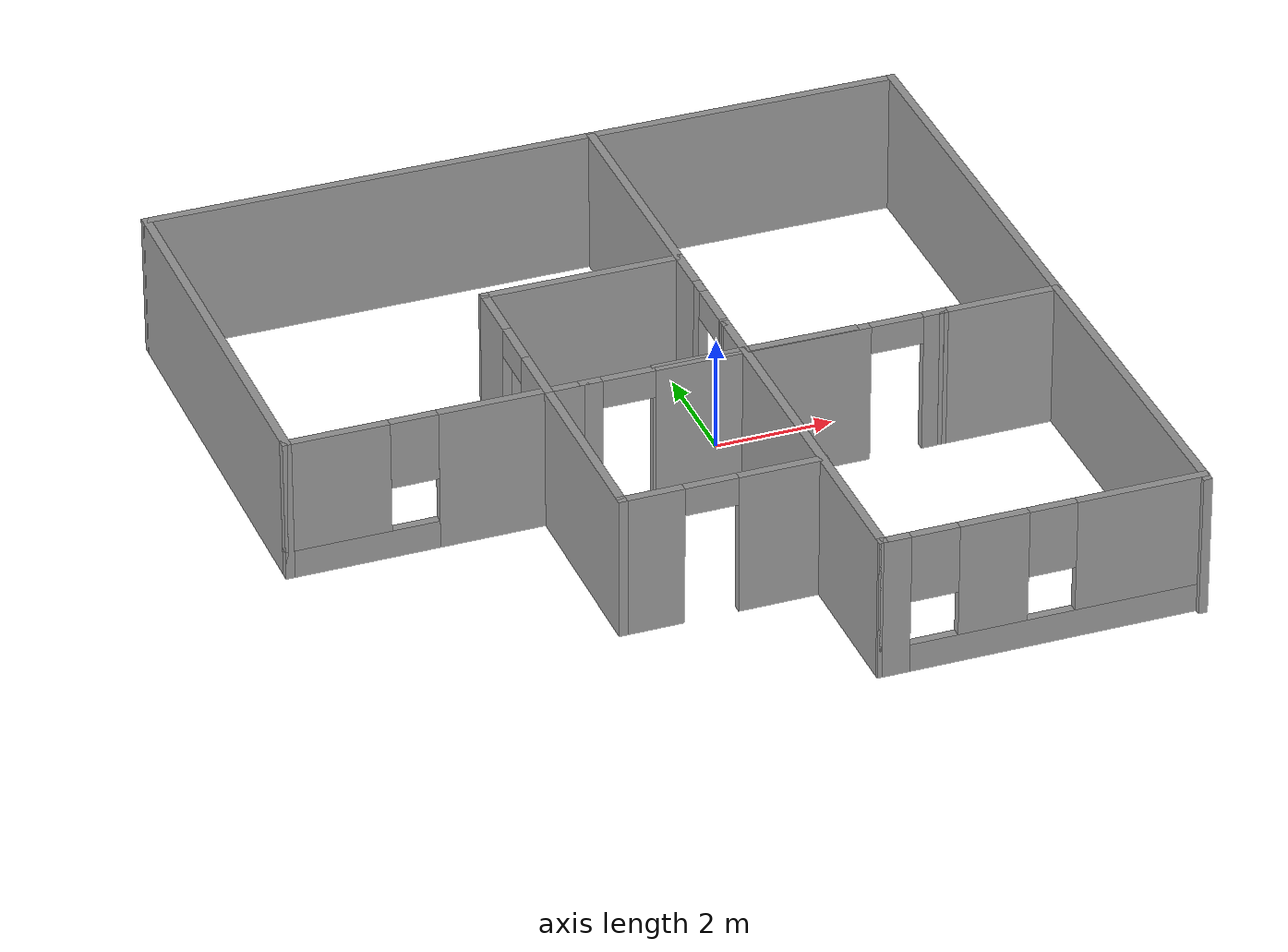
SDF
<?xml version='1.0'?>
<sdf version='1.7'>
  <model name='1plan'>
    <pose>-1.11146 -0.57122 0 0 -0 0</pose>
    <link name='Wall_0'>
      <collision name='Wall_0_Collision'>
        <geometry>
          <box>
            <size>3.48261 0.15 2.5</size>
          </box>
        </geometry>
        <pose>0 0 1.25 0 -0 0</pose>
      </collision>
      <visual name='Wall_0_Visual'>
        <pose>0 0 1.25 0 -0 0</pose>
        <geometry>
          <box>
            <size>3.48261 0.15 2.5</size>
          </box>
        </geometry>
        <material>
          <script>
            <uri>file://media/materials/scripts/gazebo.material</uri>
            <name>Gazebo/Grey</name>
          </script>
          <ambient>1 1 1 1</ambient>
        </material>
        <meta>
          <layer>0</layer>
        </meta>
      </visual>
      <pose>-0.500101 2.4239 0 0 -0 0</pose>
    </link>
    <link name='Wall_1'>
      <collision name='Wall_1_Collision'>
        <geometry>
          <box>
            <size>4.25 0.15 2.5</size>
          </box>
        </geometry>
        <pose>0 0 1.25 0 -0 0</pose>
      </collision>
      <visual name='Wall_1_Visual'>
        <pose>0 0 1.25 0 -0 0</pose>
        <geometry>
          <box>
            <size>4.25 0.15 2.5</size>
          </box>
        </geometry>
        <material>
          <script>
            <uri>file://media/materials/scripts/gazebo.material</uri>
            <name>Gazebo/Grey</name>
          </script>
          <ambient>1 1 1 1</ambient>
        </material>
        <meta>
          <layer>0</layer>
        </meta>
      </visual>
      <pose>1.1662 4.4739 0 0 -0 1.5708</pose>
    </link>
    <link name='Wall_12'>
      <pose>-4.3588 -0.573924 0 0 -0 3.14159</pose>
      <visual name='Wall_12_Visual_0'>
        <pose>-1.29006 0 1.25 0 -0 0</pose>
        <geometry>
          <box>
            <size>1.91988 0.15 2.5</size>
          </box>
        </geometry>
        <material>
          <script>
            <uri>file://media/materials/scripts/gazebo.material</uri>
            <name>Gazebo/Grey</name>
          </script>
          <ambient>1 1 1 1</ambient>
        </material>
        <meta>
          <layer>0</layer>
        </meta>
      </visual>
      <collision name='Wall_12_Collision_0'>
        <geometry>
          <box>
            <size>1.91988 0.15 2.5</size>
          </box>
        </geometry>
        <pose>-1.29006 0 1.25 0 -0 0</pose>
      </collision>
      <visual name='Wall_12_Visual_1'>
        <pose>0.959941 0 0.25 0 -0 0</pose>
        <geometry>
          <box>
            <size>2.58012 0.15 0.5</size>
          </box>
        </geometry>
        <material>
          <script>
            <uri>file://media/materials/scripts/gazebo.material</uri>
            <name>Gazebo/Grey</name>
          </script>
          <ambient>1 1 1 1</ambient>
        </material>
        <meta>
          <layer>0</layer>
        </meta>
      </visual>
      <collision name='Wall_12_Collision_1'>
        <geometry>
          <box>
            <size>2.58012 0.15 0.5</size>
          </box>
        </geometry>
        <pose>0.959941 0 0.25 0 -0 0</pose>
      </collision>
      <visual name='Wall_12_Visual_2'>
        <pose>1.35994 0 1.5 0 -0 0</pose>
        <geometry>
          <box>
            <size>1.78012 0.15 2</size>
          </box>
        </geometry>
        <material>
          <script>
            <uri>file://media/materials/scripts/gazebo.material</uri>
            <name>Gazebo/Grey</name>
          </script>
          <ambient>1 1 1 1</ambient>
        </material>
        <meta>
          <layer>0</layer>
        </meta>
      </visual>
      <collision name='Wall_12_Collision_2'>
        <geometry>
          <box>
            <size>1.78012 0.15 2</size>
          </box>
        </geometry>
        <pose>1.35994 0 1.5 0 -0 0</pose>
      </collision>
      <visual name='Wall_12_Visual_3'>
        <pose>0.069882 0 1.9 0 -0 0</pose>
        <geometry>
          <box>
            <size>0.8 0.15 1.2</size>
          </box>
        </geometry>
        <material>
          <script>
            <uri>file://media/materials/scripts/gazebo.material</uri>
            <name>Gazebo/Grey</name>
          </script>
          <ambient>1 1 1 1</ambient>
        </material>
        <meta>
          <layer>0</layer>
        </meta>
      </visual>
      <collision name='Wall_12_Collision_3'>
        <geometry>
          <box>
            <size>0.8 0.15 1.2</size>
          </box>
        </geometry>
        <pose>0.069882 0 1.9 0 -0 0</pose>
      </collision>
    </link>
    <link name='Wall_14'>
      <collision name='Wall_14_Collision'>
        <geometry>
          <box>
            <size>7.25 0.15 2.5</size>
          </box>
        </geometry>
        <pose>0 0 1.25 0 -0 0</pose>
      </collision>
      <visual name='Wall_14_Visual'>
        <pose>0 0 1.25 0 -0 0</pose>
        <geometry>
          <box>
            <size>7.25 0.15 2.5</size>
          </box>
        </geometry>
        <material>
          <script>
            <uri>file://media/materials/scripts/gazebo.material</uri>
            <name>Gazebo/Grey</name>
          </script>
          <ambient>1 1 1 1</ambient>
        </material>
        <meta>
          <layer>0</layer>
        </meta>
      </visual>
      <pose>-6.5338 2.97608 0 0 -0 1.5708</pose>
    </link>
    <link name='Wall_16'>
      <collision name='Wall_16_Collision'>
        <geometry>
          <box>
            <size>7.85 0.15 2.5</size>
          </box>
        </geometry>
        <pose>0 0 1.25 0 -0 0</pose>
      </collision>
      <visual name='Wall_16_Visual'>
        <pose>0 0 1.25 0 -0 0</pose>
        <geometry>
          <box>
            <size>7.85 0.15 2.5</size>
          </box>
        </geometry>
        <material>
          <script>
            <uri>file://media/materials/scripts/gazebo.material</uri>
            <name>Gazebo/Grey</name>
          </script>
          <ambient>1 1 1 1</ambient>
        </material>
        <meta>
          <layer>0</layer>
        </meta>
      </visual>
      <pose>-2.6838 6.52499 0 0 -0 -0.000282</pose>
    </link>
    <link name='Wall_18'>
      <collision name='Wall_18_Collision'>
        <geometry>
          <box>
            <size>5.5 0.15 2.5</size>
          </box>
        </geometry>
        <pose>0 0 1.25 0 -0 0</pose>
      </collision>
      <visual name='Wall_18_Visual'>
        <pose>0 0 1.25 0 -0 0</pose>
        <geometry>
          <box>
            <size>5.5 0.15 2.5</size>
          </box>
        </geometry>
        <material>
          <script>
            <uri>file://media/materials/scripts/gazebo.material</uri>
            <name>Gazebo/Grey</name>
          </script>
          <ambient>1 1 1 1</ambient>
        </material>
        <meta>
          <layer>0</layer>
        </meta>
      </visual>
      <pose>3.8412 6.5239 0 0 -0 0</pose>
    </link>
    <link name='Wall_19'>
      <collision name='Wall_19_Collision'>
        <geometry>
          <box>
            <size>7.25 0.15 2.5</size>
          </box>
        </geometry>
        <pose>0 0 1.25 0 -0 0</pose>
      </collision>
      <visual name='Wall_19_Visual'>
        <pose>0 0 1.25 0 -0 0</pose>
        <geometry>
          <box>
            <size>7.25 0.15 2.5</size>
          </box>
        </geometry>
        <material>
          <script>
            <uri>file://media/materials/scripts/gazebo.material</uri>
            <name>Gazebo/Grey</name>
          </script>
          <ambient>1 1 1 1</ambient>
        </material>
        <meta>
          <layer>0</layer>
        </meta>
      </visual>
      <pose>6.5162 2.9739 0 0 -0 -1.5708</pose>
    </link>
    <link name='Wall_24'>
      <collision name='Wall_24_Collision'>
        <geometry>
          <box>
            <size>2.13698 0.15 2.5</size>
          </box>
        </geometry>
        <pose>0 0 1.25 0 -0 0</pose>
      </collision>
      <visual name='Wall_24_Visual'>
        <pose>0 0 1.25 0 -0 0</pose>
        <geometry>
          <box>
            <size>2.13698 0.15 2.5</size>
          </box>
        </geometry>
        <material>
          <script>
            <uri>file://media/materials/scripts/gazebo.material</uri>
            <name>Gazebo/Grey</name>
          </script>
          <ambient>1 1 1 1</ambient>
        </material>
        <meta>
          <layer>0</layer>
        </meta>
      </visual>
      <pose>5.52273 -0.580445 0 0 -0 0.004376</pose>
    </link>
    <link name='Wall_28'>
      <collision name='Wall_28_Collision'>
        <geometry>
          <box>
            <size>1 0.15 2.5</size>
          </box>
        </geometry>
        <pose>0 0 1.25 0 -0 0</pose>
      </collision>
      <visual name='Wall_28_Visual'>
        <pose>0 0 1.25 0 -0 0</pose>
        <geometry>
          <box>
            <size>1 0.15 2.5</size>
          </box>
        </geometry>
        <material>
          <script>
            <uri>file://media/materials/scripts/gazebo.material</uri>
            <name>Gazebo/Grey</name>
          </script>
          <ambient>1 1 1 1</ambient>
        </material>
        <meta>
          <layer>0</layer>
        </meta>
      </visual>
      <pose>1.1662 1.9989 0 0 -0 -1.5708</pose>
    </link>
    <link name='Wall_31'>
      <collision name='Wall_31_Collision'>
        <geometry>
          <box>
            <size>0.982609 0.15 2.5</size>
          </box>
        </geometry>
        <pose>0 0 1.25 0 -0 0</pose>
      </collision>
      <visual name='Wall_31_Visual'>
        <pose>0 0 1.25 0 -0 0</pose>
        <geometry>
          <box>
            <size>0.982609 0.15 2.5</size>
          </box>
        </geometry>
        <material>
          <script>
            <uri>file://media/materials/scripts/gazebo.material</uri>
            <name>Gazebo/Grey</name>
          </script>
          <ambient>1 1 1 1</ambient>
        </material>
        <meta>
          <layer>0</layer>
        </meta>
      </visual>
      <pose>1.15533 -0.131532 0 0 -0 -1.5708</pose>
    </link>
    <link name='Wall_32'>
      <collision name='Wall_32_Collision'>
        <geometry>
          <box>
            <size>2 0.15 2.5</size>
          </box>
        </geometry>
        <pose>0 0 1.25 0 -0 0</pose>
      </collision>
      <visual name='Wall_32_Visual'>
        <pose>0 0 1.25 0 -0 0</pose>
        <geometry>
          <box>
            <size>2 0.15 2.5</size>
          </box>
        </geometry>
        <material>
          <script>
            <uri>file://media/materials/scripts/gazebo.material</uri>
            <name>Gazebo/Grey</name>
          </script>
          <ambient>1 1 1 1</ambient>
        </material>
        <meta>
          <layer>0</layer>
        </meta>
      </visual>
      <pose>2.08033 -0.556532 0 0 -0 -0.0094</pose>
    </link>
    <link name='Wall_34'>
      <collision name='Wall_34_Collision'>
        <geometry>
          <box>
            <size>0.75 0.15 2.5</size>
          </box>
        </geometry>
        <pose>0 0 1.25 0 -0 0</pose>
      </collision>
      <visual name='Wall_34_Visual'>
        <pose>0 0 1.25 0 -0 0</pose>
        <geometry>
          <box>
            <size>0.75 0.15 2.5</size>
          </box>
        </geometry>
        <material>
          <script>
            <uri>file://media/materials/scripts/gazebo.material</uri>
            <name>Gazebo/Grey</name>
          </script>
          <ambient>1 1 1 1</ambient>
        </material>
        <meta>
          <layer>0</layer>
        </meta>
      </visual>
      <pose>-1.8838 -0.573924 0 0 -0 0</pose>
    </link>
    <link name='Wall_36'>
      <collision name='Wall_36_Collision'>
        <geometry>
          <box>
            <size>1.64584 0.15 2.5</size>
          </box>
        </geometry>
        <pose>0 0 1.25 0 -0 0</pose>
      </collision>
      <visual name='Wall_36_Visual'>
        <pose>0 0 1.25 0 -0 0</pose>
        <geometry>
          <box>
            <size>1.64584 0.15 2.5</size>
          </box>
        </geometry>
        <material>
          <script>
            <uri>file://media/materials/scripts/gazebo.material</uri>
            <name>Gazebo/Grey</name>
          </script>
          <ambient>1 1 1 1</ambient>
        </material>
        <meta>
          <layer>0</layer>
        </meta>
      </visual>
      <pose>0.407508 -0.544576 0 0 -0 -0.00436</pose>
    </link>
    <link name='Wall_37'>
      <collision name='Wall_37_Collision'>
        <geometry>
          <box>
            <size>6 0.15 2.5</size>
          </box>
        </geometry>
        <pose>0 0 1.25 0 -0 0</pose>
      </collision>
      <visual name='Wall_37_Visual'>
        <pose>0 0 1.25 0 -0 0</pose>
        <geometry>
          <box>
            <size>6 0.15 2.5</size>
          </box>
        </geometry>
        <material>
          <script>
            <uri>file://media/materials/scripts/gazebo.material</uri>
            <name>Gazebo/Grey</name>
          </script>
          <ambient>1 1 1 1</ambient>
        </material>
        <meta>
          <layer>0</layer>
        </meta>
      </visual>
      <pose>1.15533 -3.48153 0 0 -0 -1.5708</pose>
    </link>
    <link name='Wall_46'>
      <collision name='Wall_46_Collision'>
        <geometry>
          <box>
            <size>3.5 0.15 2.5</size>
          </box>
        </geometry>
        <pose>0 0 1.25 0 -0 0</pose>
      </collision>
      <visual name='Wall_46_Visual'>
        <pose>0 0 1.25 0 -0 0</pose>
        <geometry>
          <box>
            <size>3.5 0.15 2.5</size>
          </box>
        </geometry>
        <material>
          <script>
            <uri>file://media/materials/scripts/gazebo.material</uri>
            <name>Gazebo/Grey</name>
          </script>
          <ambient>1 1 1 1</ambient>
        </material>
        <meta>
          <layer>0</layer>
        </meta>
      </visual>
      <pose>-2.1838 -2.24892 0 0 -0 -1.5708</pose>
    </link>
    <link name='Wall_47'>
      <pose>-0.508796 -3.92392 0 0 -0 0</pose>
      <visual name='Wall_47_Visual_0'>
        <pose>-1.20168 0 1.25 0 -0 0</pose>
        <geometry>
          <box>
            <size>1.09663 0.15 2.5</size>
          </box>
        </geometry>
        <material>
          <script>
            <uri>file://media/materials/scripts/gazebo.material</uri>
            <name>Gazebo/Grey</name>
          </script>
          <ambient>1 1 1 1</ambient>
        </material>
        <meta>
          <layer>0</layer>
        </meta>
      </visual>
      <collision name='Wall_47_Collision_0'>
        <geometry>
          <box>
            <size>1.09663 0.15 2.5</size>
          </box>
        </geometry>
        <pose>-1.20168 0 1.25 0 -0 0</pose>
      </collision>
      <visual name='Wall_47_Visual_1'>
        <pose>0.998315 0 1.25 0 -0 0</pose>
        <geometry>
          <box>
            <size>1.50337 0.15 2.5</size>
          </box>
        </geometry>
        <material>
          <script>
            <uri>file://media/materials/scripts/gazebo.material</uri>
            <name>Gazebo/Grey</name>
          </script>
          <ambient>1 1 1 1</ambient>
        </material>
        <meta>
          <layer>0</layer>
        </meta>
      </visual>
      <collision name='Wall_47_Collision_1'>
        <geometry>
          <box>
            <size>1.50337 0.15 2.5</size>
          </box>
        </geometry>
        <pose>0.998315 0 1.25 0 -0 0</pose>
      </collision>
      <visual name='Wall_47_Visual_2'>
        <pose>-0.20337 0 2.25 0 -0 0</pose>
        <geometry>
          <box>
            <size>0.9 0.15 0.5</size>
          </box>
        </geometry>
        <material>
          <script>
            <uri>file://media/materials/scripts/gazebo.material</uri>
            <name>Gazebo/Grey</name>
          </script>
          <ambient>1 1 1 1</ambient>
        </material>
        <meta>
          <layer>0</layer>
        </meta>
      </visual>
      <collision name='Wall_47_Collision_2'>
        <geometry>
          <box>
            <size>0.9 0.15 0.5</size>
          </box>
        </geometry>
        <pose>-0.20337 0 2.25 0 -0 0</pose>
      </collision>
    </link>
    <link name='Wall_49'>
      <pose>-2.1751 0.924989 0 0 -0 -1.5766</pose>
      <visual name='Wall_49_Visual_0'>
        <pose>-1.00434 0 1.25 0 -0 0</pose>
        <geometry>
          <box>
            <size>1.1392 0.15 2.5</size>
          </box>
        </geometry>
        <material>
          <script>
            <uri>file://media/materials/scripts/gazebo.material</uri>
            <name>Gazebo/Grey</name>
          </script>
          <ambient>1 1 1 1</ambient>
        </material>
        <meta>
          <layer>0</layer>
        </meta>
      </visual>
      <collision name='Wall_49_Collision_0'>
        <geometry>
          <box>
            <size>1.1392 0.15 2.5</size>
          </box>
        </geometry>
        <pose>-1.00434 0 1.25 0 -0 0</pose>
      </collision>
      <visual name='Wall_49_Visual_1'>
        <pose>1.0196 0 1.25 0 -0 0</pose>
        <geometry>
          <box>
            <size>1.10868 0.15 2.5</size>
          </box>
        </geometry>
        <material>
          <script>
            <uri>file://media/materials/scripts/gazebo.material</uri>
            <name>Gazebo/Grey</name>
          </script>
          <ambient>1 1 1 1</ambient>
        </material>
        <meta>
          <layer>0</layer>
        </meta>
      </visual>
      <collision name='Wall_49_Collision_1'>
        <geometry>
          <box>
            <size>1.10868 0.15 2.5</size>
          </box>
        </geometry>
        <pose>1.0196 0 1.25 0 -0 0</pose>
      </collision>
      <visual name='Wall_49_Visual_2'>
        <pose>0.015258 0 2.25 0 -0 0</pose>
        <geometry>
          <box>
            <size>0.9 0.15 0.5</size>
          </box>
        </geometry>
        <material>
          <script>
            <uri>file://media/materials/scripts/gazebo.material</uri>
            <name>Gazebo/Grey</name>
          </script>
          <ambient>1 1 1 1</ambient>
        </material>
        <meta>
          <layer>0</layer>
        </meta>
      </visual>
      <collision name='Wall_49_Collision_2'>
        <geometry>
          <box>
            <size>0.9 0.15 0.5</size>
          </box>
        </geometry>
        <pose>0.015258 0 2.25 0 -0 0</pose>
      </collision>
    </link>
    <link name='Wall_51'>
      <pose>1.47273 -0.579358 0 0 -0 -0.001778</pose>
      <visual name='Wall_51_Visual_0'>
        <pose>-2.94256 0 1.25 0 -0 0</pose>
        <geometry>
          <box>
            <size>0.377932 0.15 2.5</size>
          </box>
        </geometry>
        <material>
          <script>
            <uri>file://media/materials/scripts/gazebo.material</uri>
            <name>Gazebo/Grey</name>
          </script>
          <ambient>1 1 1 1</ambient>
        </material>
        <meta>
          <layer>0</layer>
        </meta>
      </visual>
      <collision name='Wall_51_Collision_0'>
        <geometry>
          <box>
            <size>0.377932 0.15 2.5</size>
          </box>
        </geometry>
        <pose>-2.94256 0 1.25 0 -0 0</pose>
      </collision>
      <visual name='Wall_51_Visual_1'>
        <pose>-0.02245 0 1.25 0 -0 0</pose>
        <geometry>
          <box>
            <size>3.66229 0.15 2.5</size>
          </box>
        </geometry>
        <material>
          <script>
            <uri>file://media/materials/scripts/gazebo.material</uri>
            <name>Gazebo/Grey</name>
          </script>
          <ambient>1 1 1 1</ambient>
        </material>
        <meta>
          <layer>0</layer>
        </meta>
      </visual>
      <collision name='Wall_51_Collision_1'>
        <geometry>
          <box>
            <size>3.66229 0.15 2.5</size>
          </box>
        </geometry>
        <pose>-0.02245 0 1.25 0 -0 0</pose>
      </collision>
      <visual name='Wall_51_Visual_2'>
        <pose>2.92011 0 1.25 0 -0 0</pose>
        <geometry>
          <box>
            <size>0.422833 0.15 2.5</size>
          </box>
        </geometry>
        <material>
          <script>
            <uri>file://media/materials/scripts/gazebo.material</uri>
            <name>Gazebo/Grey</name>
          </script>
          <ambient>1 1 1 1</ambient>
        </material>
        <meta>
          <layer>0</layer>
        </meta>
      </visual>
      <collision name='Wall_51_Collision_2'>
        <geometry>
          <box>
            <size>0.422833 0.15 2.5</size>
          </box>
        </geometry>
        <pose>2.92011 0 1.25 0 -0 0</pose>
      </collision>
      <visual name='Wall_51_Visual_3'>
        <pose>-2.3036 0 2.25 0 -0 0</pose>
        <geometry>
          <box>
            <size>0.9 0.15 0.5</size>
          </box>
        </geometry>
        <material>
          <script>
            <uri>file://media/materials/scripts/gazebo.material</uri>
            <name>Gazebo/Grey</name>
          </script>
          <ambient>1 1 1 1</ambient>
        </material>
        <meta>
          <layer>0</layer>
        </meta>
      </visual>
      <collision name='Wall_51_Collision_3'>
        <geometry>
          <box>
            <size>0.9 0.15 0.5</size>
          </box>
        </geometry>
        <pose>-2.3036 0 2.25 0 -0 0</pose>
      </collision>
      <visual name='Wall_51_Visual_4'>
        <pose>2.25869 0 2.25 0 -0 0</pose>
        <geometry>
          <box>
            <size>0.9 0.15 0.5</size>
          </box>
        </geometry>
        <material>
          <script>
            <uri>file://media/materials/scripts/gazebo.material</uri>
            <name>Gazebo/Grey</name>
          </script>
          <ambient>1 1 1 1</ambient>
        </material>
        <meta>
          <layer>0</layer>
        </meta>
      </visual>
      <collision name='Wall_51_Collision_4'>
        <geometry>
          <box>
            <size>0.9 0.15 0.5</size>
          </box>
        </geometry>
        <pose>2.25869 0 2.25 0 -0 0</pose>
      </collision>
    </link>
    <link name='Wall_52'>
      <collision name='Wall_52_Collision'>
        <geometry>
          <box>
            <size>0.15 0.15 2.5</size>
          </box>
        </geometry>
        <pose>0 0 1.25 0 -0 0</pose>
      </collision>
      <visual name='Wall_52_Visual'>
        <pose>0 0 1.25 0 -0 0</pose>
        <geometry>
          <box>
            <size>0.15 0.15 2.5</size>
          </box>
        </geometry>
        <material>
          <script>
            <uri>file://media/materials/scripts/gazebo.material</uri>
            <name>Gazebo/Grey</name>
          </script>
          <ambient>0 0 0 1</ambient>
        </material>
        <meta>
          <layer>0</layer>
        </meta>
      </visual>
      <pose>4.52925 -0.584793 0 0 -0 0</pose>
    </link>
    <link name='Wall_55'>
      <pose>1.16077 0.929337 0 0 -0 -1.57923</pose>
      <visual name='Wall_55_Visual_0'>
        <pose>-0.554401 0 1.25 0 -0 0</pose>
        <geometry>
          <box>
            <size>0.330374 0.15 2.5</size>
          </box>
        </geometry>
        <material>
          <script>
            <uri>file://media/materials/scripts/gazebo.material</uri>
            <name>Gazebo/Grey</name>
          </script>
          <ambient>1 1 1 1</ambient>
        </material>
        <meta>
          <layer>0</layer>
        </meta>
      </visual>
      <collision name='Wall_55_Collision_0'>
        <geometry>
          <box>
            <size>0.330374 0.15 2.5</size>
          </box>
        </geometry>
        <pose>-0.554401 0 1.25 0 -0 0</pose>
      </collision>
      <visual name='Wall_55_Visual_1'>
        <pose>0.615187 0 1.25 0 -0 0</pose>
        <geometry>
          <box>
            <size>0.208802 0.15 2.5</size>
          </box>
        </geometry>
        <material>
          <script>
            <uri>file://media/materials/scripts/gazebo.material</uri>
            <name>Gazebo/Grey</name>
          </script>
          <ambient>1 1 1 1</ambient>
        </material>
        <meta>
          <layer>0</layer>
        </meta>
      </visual>
      <collision name='Wall_55_Collision_1'>
        <geometry>
          <box>
            <size>0.208802 0.15 2.5</size>
          </box>
        </geometry>
        <pose>0.615187 0 1.25 0 -0 0</pose>
      </collision>
      <visual name='Wall_55_Visual_2'>
        <pose>0.060786 0 2.25 0 -0 0</pose>
        <geometry>
          <box>
            <size>0.9 0.15 0.5</size>
          </box>
        </geometry>
        <material>
          <script>
            <uri>file://media/materials/scripts/gazebo.material</uri>
            <name>Gazebo/Grey</name>
          </script>
          <ambient>1 1 1 1</ambient>
        </material>
        <meta>
          <layer>0</layer>
        </meta>
      </visual>
      <collision name='Wall_55_Collision_2'>
        <geometry>
          <box>
            <size>0.9 0.15 0.5</size>
          </box>
        </geometry>
        <pose>0.060786 0 2.25 0 -0 0</pose>
      </collision>
    </link>
    <link name='Wall_58'>
      <collision name='Wall_58_Collision'>
        <geometry>
          <box>
            <size>6 0.15 2.5</size>
          </box>
        </geometry>
        <pose>0 0 1.25 0 -0 0</pose>
      </collision>
      <visual name='Wall_58_Visual'>
        <pose>0 0 1.25 0 -0 0</pose>
        <geometry>
          <box>
            <size>6 0.15 2.5</size>
          </box>
        </geometry>
        <material>
          <script>
            <uri>file://media/materials/scripts/gazebo.material</uri>
            <name>Gazebo/Grey</name>
          </script>
          <ambient>1 1 1 1</ambient>
        </material>
        <meta>
          <layer>0</layer>
        </meta>
      </visual>
      <pose>6.5249 -3.5011 0 0 -0 -1.56782</pose>
    </link>
    <link name='Wall_59'>
      <collision name='Wall_59_Collision'>
        <geometry>
          <box>
            <size>0.25 0.15 2.5</size>
          </box>
        </geometry>
        <pose>0 0 1.25 0 -0 0</pose>
      </collision>
      <visual name='Wall_59_Visual'>
        <pose>0 0 1.25 0 -0 0</pose>
        <geometry>
          <box>
            <size>0.25 0.15 2.5</size>
          </box>
        </geometry>
        <material>
          <script>
            <uri>file://media/materials/scripts/gazebo.material</uri>
            <name>Gazebo/Grey</name>
          </script>
          <ambient>0 0 0 1</ambient>
        </material>
        <meta>
          <layer>0</layer>
        </meta>
      </visual>
      <pose>6.5249 -6.4761 0 0 -0 -1.5708</pose>
    </link>
    <link name='Wall_61'>
      <collision name='Wall_61_Collision'>
        <geometry>
          <box>
            <size>0.15 0.15 2.5</size>
          </box>
        </geometry>
        <pose>0 0 1.25 0 -0 0</pose>
      </collision>
      <visual name='Wall_61_Visual'>
        <pose>0 0 1.25 0 -0 0</pose>
        <geometry>
          <box>
            <size>0.15 0.15 2.5</size>
          </box>
        </geometry>
        <material>
          <script>
            <uri>file://media/materials/scripts/gazebo.material</uri>
            <name>Gazebo/Grey</name>
          </script>
          <ambient>0 0 0 1</ambient>
        </material>
        <meta>
          <layer>0</layer>
        </meta>
      </visual>
      <pose>1.15533 -6.40653 0 0 -0 0</pose>
    </link>
    <link name='Wall_62'>
      <pose>3.84012 -6.41631 0 0 -0 -0.003644</pose>
      <visual name='Wall_62_Visual_0'>
        <pose>-2.49003 0 1.25 0 -0 0</pose>
        <geometry>
          <box>
            <size>0.539545 0.15 2.5</size>
          </box>
        </geometry>
        <material>
          <script>
            <uri>file://media/materials/scripts/gazebo.material</uri>
            <name>Gazebo/Grey</name>
          </script>
          <ambient>1 1 1 1</ambient>
        </material>
        <meta>
          <layer>0</layer>
        </meta>
      </visual>
      <collision name='Wall_62_Collision_0'>
        <geometry>
          <box>
            <size>0.539545 0.15 2.5</size>
          </box>
        </geometry>
        <pose>-2.49003 0 1.25 0 -0 0</pose>
      </collision>
      <visual name='Wall_62_Visual_1'>
        <pose>0.269773 0 0.25 0 -0 0</pose>
        <geometry>
          <box>
            <size>4.98006 0.15 0.5</size>
          </box>
        </geometry>
        <material>
          <script>
            <uri>file://media/materials/scripts/gazebo.material</uri>
            <name>Gazebo/Grey</name>
          </script>
          <ambient>1 1 1 1</ambient>
        </material>
        <meta>
          <layer>0</layer>
        </meta>
      </visual>
      <collision name='Wall_62_Collision_1'>
        <geometry>
          <box>
            <size>4.98006 0.15 0.5</size>
          </box>
        </geometry>
        <pose>0.269773 0 0.25 0 -0 0</pose>
      </collision>
      <visual name='Wall_62_Visual_2'>
        <pose>-0.839075 0 1.5 0 -0 0</pose>
        <geometry>
          <box>
            <size>1.16236 0.15 2</size>
          </box>
        </geometry>
        <material>
          <script>
            <uri>file://media/materials/scripts/gazebo.material</uri>
            <name>Gazebo/Grey</name>
          </script>
          <ambient>1 1 1 1</ambient>
        </material>
        <meta>
          <layer>0</layer>
        </meta>
      </visual>
      <collision name='Wall_62_Collision_2'>
        <geometry>
          <box>
            <size>1.16236 0.15 2</size>
          </box>
        </geometry>
        <pose>-0.839075 0 1.5 0 -0 0</pose>
      </collision>
      <visual name='Wall_62_Visual_3'>
        <pose>1.65095 0 1.5 0 -0 0</pose>
        <geometry>
          <box>
            <size>2.2177 0.15 2</size>
          </box>
        </geometry>
        <material>
          <script>
            <uri>file://media/materials/scripts/gazebo.material</uri>
            <name>Gazebo/Grey</name>
          </script>
          <ambient>1 1 1 1</ambient>
        </material>
        <meta>
          <layer>0</layer>
        </meta>
      </visual>
      <collision name='Wall_62_Collision_3'>
        <geometry>
          <box>
            <size>2.2177 0.15 2</size>
          </box>
        </geometry>
        <pose>1.65095 0 1.5 0 -0 0</pose>
      </collision>
      <visual name='Wall_62_Visual_4'>
        <pose>-1.82025 0 1.9 0 -0 0</pose>
        <geometry>
          <box>
            <size>0.8 0.15 1.2</size>
          </box>
        </geometry>
        <material>
          <script>
            <uri>file://media/materials/scripts/gazebo.material</uri>
            <name>Gazebo/Grey</name>
          </script>
          <ambient>1 1 1 1</ambient>
        </material>
        <meta>
          <layer>0</layer>
        </meta>
      </visual>
      <collision name='Wall_62_Collision_4'>
        <geometry>
          <box>
            <size>0.8 0.15 1.2</size>
          </box>
        </geometry>
        <pose>-1.82025 0 1.9 0 -0 0</pose>
      </collision>
      <visual name='Wall_62_Visual_5'>
        <pose>0.142104 0 1.9 0 -0 0</pose>
        <geometry>
          <box>
            <size>0.8 0.15 1.2</size>
          </box>
        </geometry>
        <material>
          <script>
            <uri>file://media/materials/scripts/gazebo.material</uri>
            <name>Gazebo/Grey</name>
          </script>
          <ambient>1 1 1 1</ambient>
        </material>
        <meta>
          <layer>0</layer>
        </meta>
      </visual>
      <collision name='Wall_62_Collision_5'>
        <geometry>
          <box>
            <size>0.8 0.15 1.2</size>
          </box>
        </geometry>
        <pose>0.142104 0 1.9 0 -0 0</pose>
      </collision>
    </link>
    <static>1</static>
  </model>
</sdf>
